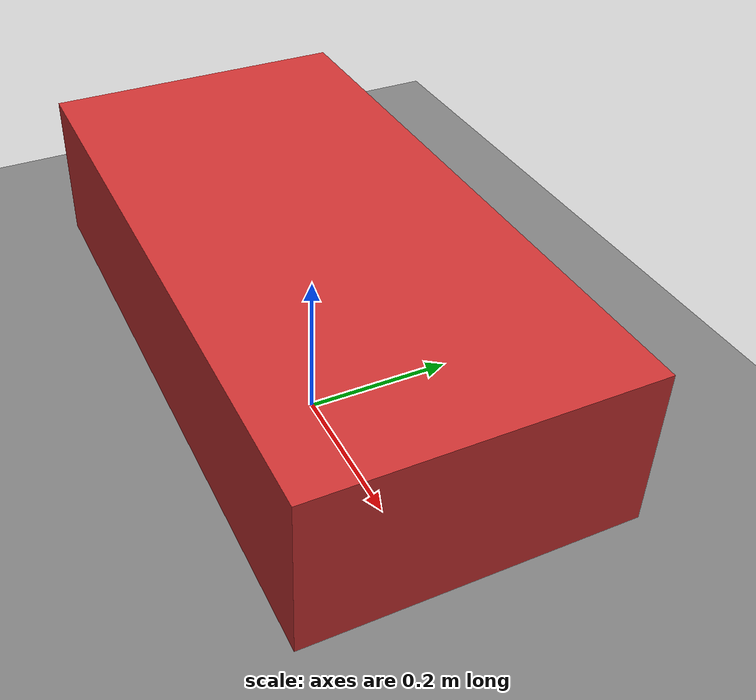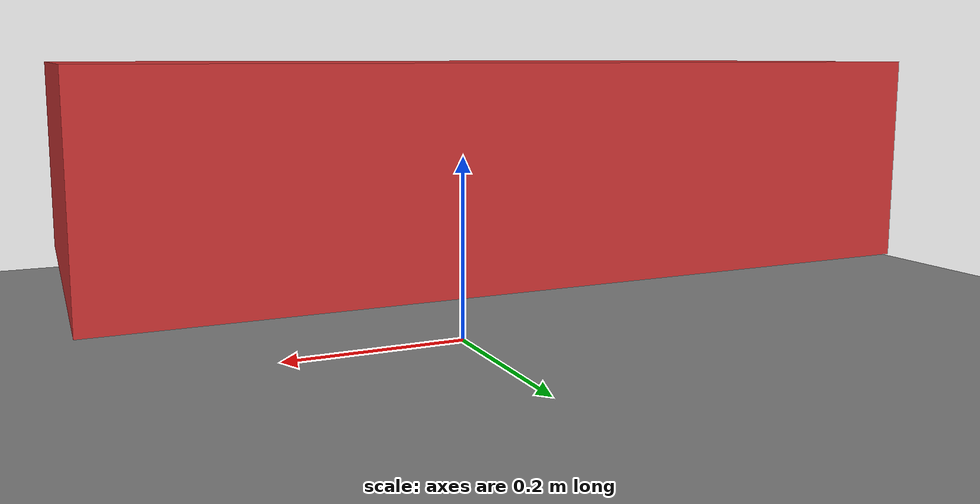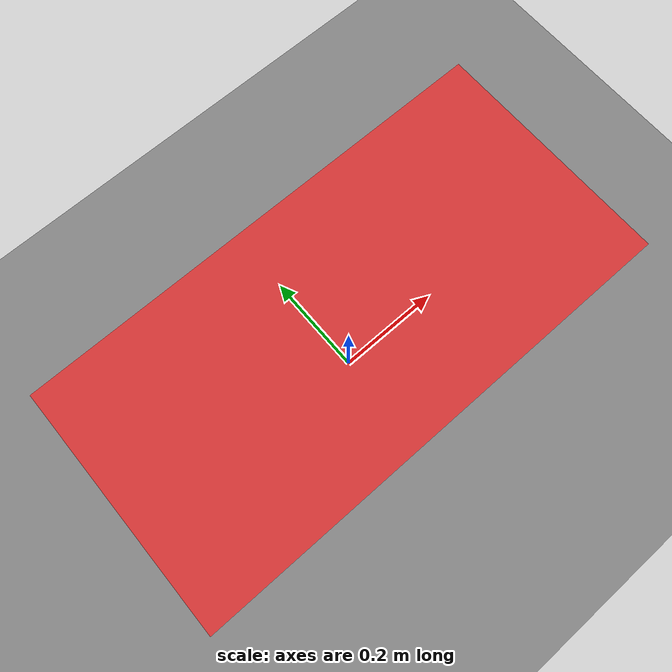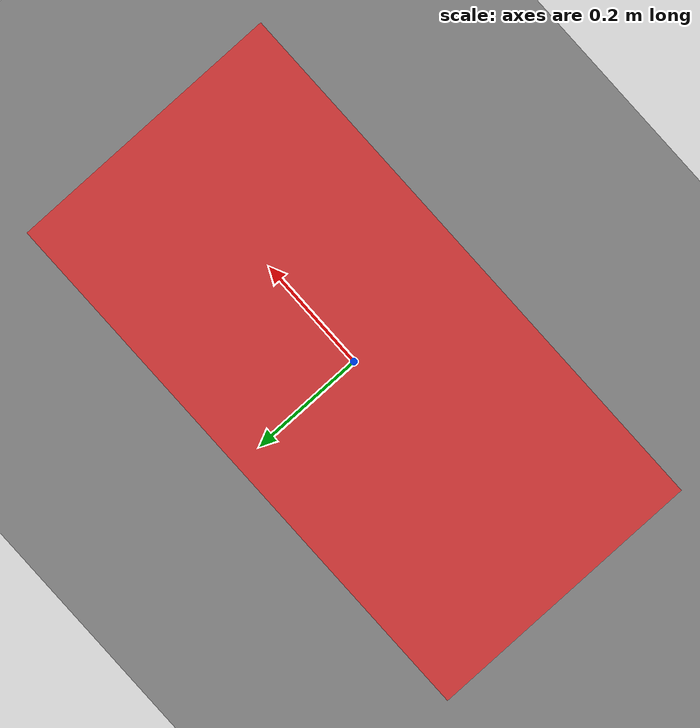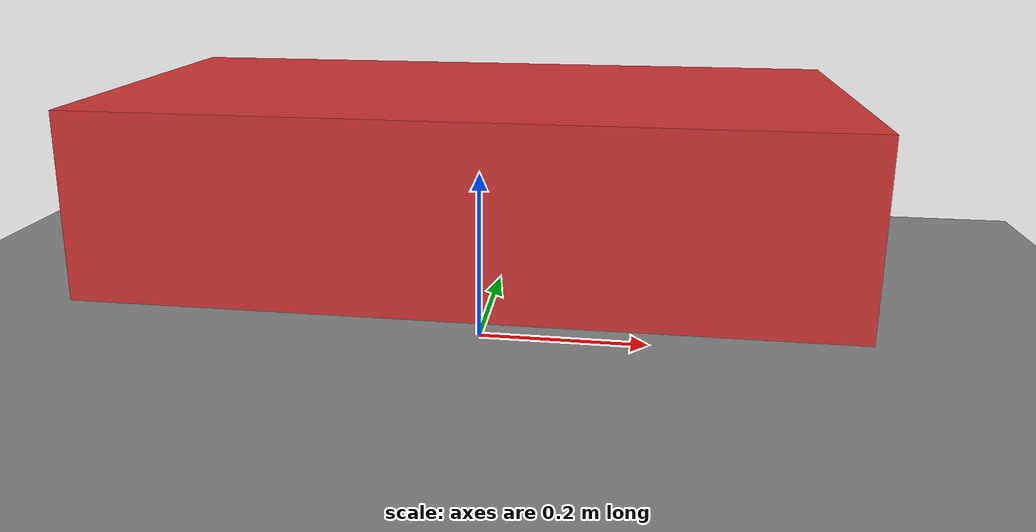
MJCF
<mujoco model="four_wheel_car">
  <compiler angle="radian"/>
  <option timestep="0.002" integrator="implicitfast" iterations="50"/>
  <default>
    <joint type="hinge" damping="0.5" armature="0.01"/>
    <geom type="capsule" contype="1" conaffinity="1" condim="3"/>
  </default>
  <worldbody>
    <geom name="floor" type="plane" size="20 20 0.1" condim="3"/>
    <body name="chassis" pos="0 0 0.2">
      <geom name="chassis_geom" type="box" size="0.4 0.2 0.1" rgba="0.8 0.2 0.2 1"/>
      <!-- wheels -->
      <body name="wheel_fl" pos="0.3 0.15 0">
        <joint name="wheel_fl_joint" type="hinge" axis="0 1 0" pos="0 0 0"/>
        <geom name="wheel_fl_geom" type="cylinder" size="0.05 0.02" rgba="0.1 0.1 0.1 1" condim="3"/>
      </body>
      <body name="wheel_fr" pos="0.3 -0.15 0">
        <joint name="wheel_fr_joint" type="hinge" axis="0 1 0" pos="0 0 0"/>
        <geom name="wheel_fr_geom" type="cylinder" size="0.05 0.02" rgba="0.1 0.1 0.1 1" condim="3"/>
      </body>
      <body name="wheel_rl" pos="-0.3 0.15 0">
        <joint name="wheel_rl_joint" type="hinge" axis="0 1 0" pos="0 0 0"/>
        <geom name="wheel_rl_geom" type="cylinder" size="0.05 0.02" rgba="0.1 0.1 0.1 1" condim="3"/>
      </body>
      <body name="wheel_rr" pos="-0.3 -0.15 0">
        <joint name="wheel_rr_joint" type="hinge" axis="0 1 0" pos="0 0 0"/>
        <geom name="wheel_rr_geom" type="cylinder" size="0.05 0.02" rgba="0.1 0.1 0.1 1" condim="3"/>
      </body>
    </body>
  </worldbody>
  <actuator>
    <motor joint="wheel_fl_joint" ctrlrange="-5 5" gear="30"/>
    <motor joint="wheel_fr_joint" ctrlrange="-5 5" gear="30"/>
    <motor joint="wheel_rl_joint" ctrlrange="-5 5" gear="30"/>
    <motor joint="wheel_rr_joint" ctrlrange="-5 5" gear="30"/>
  </actuator>
</mujoco>
